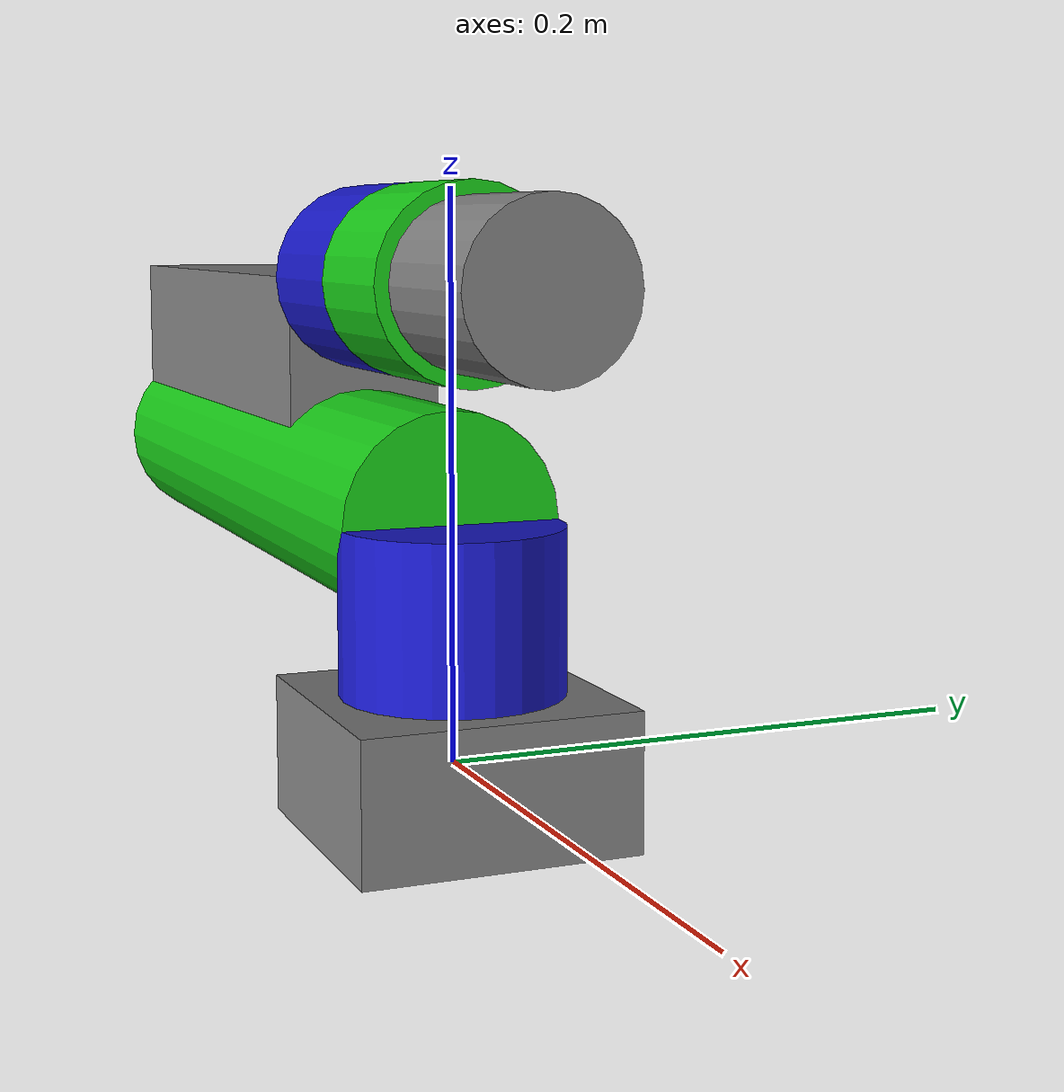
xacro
<?xml version="1.0"?>
<robot name="robot_arm" xmlns:xacro="http://www.ros.org/wiki/xacro">

  <!-- |                       LINK DEFINITIONS                          | -->
  <!-- 시각적 표현을 위한 간단한 링크들. 실제 모양과 크기는 조정이 필요합니다. -->

  <!-- Base Link -->
  <link name="base_link">
    <visual>
      <geometry>
        <box size="0.1 0.1 0.05"/>
      </geometry>
      <material name="grey">
        <color rgba="0.5 0.5 0.5 1"/>
      </material>
    </visual>
    <collision>
      <geometry>
        <box size="0.1 0.1 0.05"/>
      </geometry>
    </collision>
  </link>

  <!-- Link 1 -->
  <link name="link1">
    <visual>
      <geometry>
        <cylinder length="0.09925" radius="0.04"/>
      </geometry>
      <origin xyz="0 0 ${0.09925/2}" rpy="0 0 0"/>
      <material name="blue">
        <color rgba="0.1 0.1 0.8 1"/>
      </material>
    </visual>
    <collision>
      <geometry>
        <cylinder length="0.09925" radius="0.04"/>
      </geometry>
      <origin xyz="0 0 ${0.09925/2}" rpy="0 0 0"/>
    </collision>
  </link>

  <!-- Link 2 -->
  <link name="link2">
    <visual>
      <geometry>
        <cylinder length="0.34865" radius="0.04"/>
      </geometry>
      <origin xyz="${-0.34865/2} 0 0" rpy="0 1.57079632679 0"/>
      <material name="green">
        <color rgba="0.1 0.8 0.1 1"/>
      </material>
    </visual>
    <collision>
      <geometry>
        <cylinder length="0.34865" radius="0.04"/>
      </geometry>
      <origin xyz="${-0.34865/2} 0 0" rpy="0 1.57079632679 0"/>
    </collision>
  </link>

  <!-- Link 3 -->
  <link name="link3">
    <visual>
      <geometry>
        <box size="0.2518 0.06 0.08347"/>
      </geometry>
      <origin xyz="${0.2518/2} 0 ${0.08347/2}" rpy="0 0 0"/>
      <material name="grey"/>
    </visual>
    <collision>
      <geometry>
        <box size="0.2518 0.06 0.08347"/>
      </geometry>
      <origin xyz="${0.2518/2} 0 ${0.08347/2}" rpy="0 0 0"/>
    </collision>
  </link>

  <!-- Link 4 -->
  <link name="link4">
    <visual>
      <geometry>
        <cylinder length="0.06049" radius="0.035"/>
      </geometry>
      <origin xyz="${0.06049/2} 0 0" rpy="0 1.57079632679 0"/>
      <material name="blue"/>
    </visual>
    <collision>
      <geometry>
        <cylinder length="0.06049" radius="0.035"/>
      </geometry>
      <origin xyz="${0.06049/2} 0 0" rpy="0 1.57079632679 0"/>
    </collision>
  </link>

  <!-- Link 5 -->
  <link name="link5">
    <visual>
      <geometry>
        <cylinder length="0.05815" radius="0.035"/>
      </geometry>
      <origin xyz="${0.05815/2} 0 0" rpy="0 1.57079632679 0"/>
      <material name="green"/>
    </visual>
    <collision>
      <geometry>
        <cylinder length="0.05815" radius="0.035"/>
      </geometry>
      <origin xyz="${0.05815/2} 0 0" rpy="0 1.57079632679 0"/>
    </collision>
  </link>

  <!-- Link 6 (Wrist/Flange) -->
  <link name="link6">
    <visual>
      <geometry>
        <cylinder length="0.06715" radius="0.03"/>
      </geometry>
      <origin xyz="${0.06715/2} 0 0" rpy="0 1.57079632679 0"/>
      <material name="grey"/>
    </visual>
    <collision>
      <geometry>
        <cylinder length="0.06715" radius="0.03"/>
      </geometry>
      <origin xyz="${0.06715/2} 0 0" rpy="0 1.57079632679 0"/>
    </collision>
  </link>

  <!-- End-Effector Link (Tool) -->
  <link name="tool0"/>

  <!-- |                       JOINT DEFINITIONS                         | -->
  <!-- C++ 코드의 변환 행렬을 기반으로 관절을 정의합니다. -->

  <!-- Joint 1 (Base to Link 1) -->
  <joint name="joint1" type="revolute">
    <parent link="base_link"/>
    <child link="link1"/>
    <origin xyz="0 0 -0.01525" rpy="0 0 0"/>
    <axis xyz="0 0 1"/>
    <limit lower="-3.14159" upper="3.14159" effort="100" velocity="2.0"/>
  </joint>

  <!-- Joint 2 (Link 1 to Link 2) -->
  <joint name="joint2" type="revolute">
    <parent link="link1"/>
    <child link="link2"/>
    <origin xyz="0 0 0.09925" rpy="0 0 0"/>
    <axis xyz="0 1 0"/>
    <limit lower="-3.14159" upper="3.14159" effort="100" velocity="2.0"/>
  </joint>

  <!-- Joint 3 (Link 2 to Link 3) -->
  <joint name="joint3" type="revolute">
    <parent link="link2"/>
    <child link="link3"/>
    <origin xyz="-0.34865 0 0" rpy="0 0 0"/>
    <axis xyz="0 1 0"/>
    <limit lower="-3.14159" upper="3.14159" effort="100" velocity="2.0"/>
  </joint>

  <!-- Joint 4 (Link 3 to Link 4) -->
  <joint name="joint4" type="revolute">
    <parent link="link3"/>
    <child link="link4"/>
    <origin xyz="0.2518 0 0.08347" rpy="0 0 0"/>
    <axis xyz="1 0 0"/>
    <limit lower="-3.14159" upper="3.14159" effort="100" velocity="2.0"/>
  </joint>

  <!-- Joint 5 (Link 4 to Link 5) -->
  <!-- C++ 코드의 특이한 회전 행렬을 반영하기 위해 rpy 오프셋을 추가했습니다. -->
  <!-- 이 부분은 RViz에서 확인하며 조정이 필요할 수 있습니다. -->
  <joint name="joint5" type="revolute">
    <parent link="link4"/>
    <child link="link5"/>
    <origin xyz="0.06049 0 0" rpy="0 0 0"/>
    <axis xyz="0 0 1"/>
    <limit lower="-3.14159" upper="3.14159" effort="100" velocity="2.0"/>
  </joint>

  <!-- Joint 6 (Link 5 to Link 6) -->
  <joint name="joint6" type="revolute">
    <parent link="link5"/>
    <child link="link6"/>
    <origin xyz="0.05815 0 0" rpy="0 0 0"/>
    <axis xyz="1 0 0"/>
    <limit lower="-3.14159" upper="3.14159" effort="100" velocity="2.0"/>
  </joint>

  <!-- End-Effector Joint (Fixed) -->
  <joint name="joint_tool" type="fixed">
    <parent link="link6"/>
    <child link="tool0"/>
    <origin xyz="0.06715 0 0" rpy="0 0 0"/>
  </joint>

</robot>
